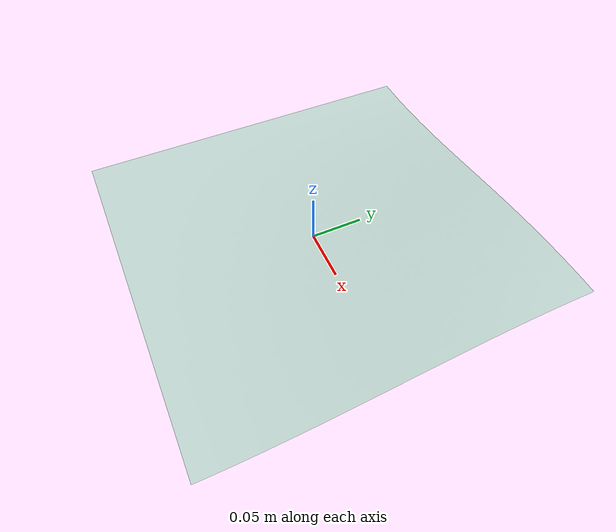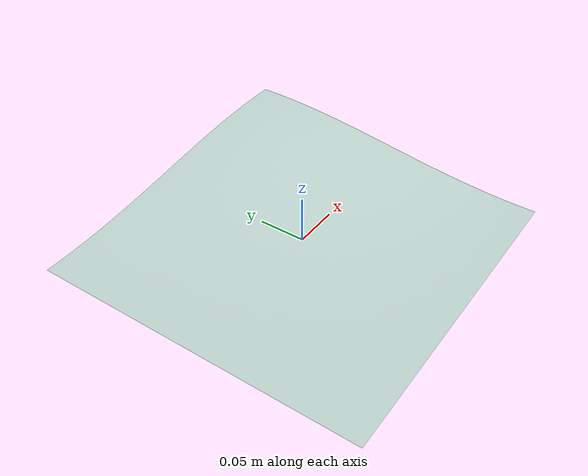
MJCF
<mujoco model="plane_curved">
  <asset>
    <mesh file="meshes/plane_surfaces/curved_surface.obj" name="plane_curved_mesh"/>
  </asset>
  <worldbody>
    <body>
      <body name="object">
        <geom mesh="plane_curved_mesh" type="mesh"
              solimp="0.998 0.998 0.001" solref="0.001 1"
              density="3.125" friction="0.95 0.3 0.1" rgba="0.72 0.80 0.78 1"
              contype="1" conaffinity="1" group="0"/>
        <geom mesh="plane_curved_mesh" type="mesh"
              solimp="0.998 0.998 0.001" solref="0.001 1"
              density="1e-8" rgba="0.72 0.80 0.78 1"
              contype="0" conaffinity="0" group="1"/>
      </body>
      <site rgba="0 0 0 0" size="0.005" pos="0 0 0" name="bottom_site"/>
      <site rgba="0 0 0 0" size="0.005" pos="0 0 0.035" name="top_site"/>
      <site rgba="0 0 0 0" size="0.005" pos="0.175 0.175 0" name="horizontal_radius_site"/>
    </body>
  </worldbody>
</mujoco>
